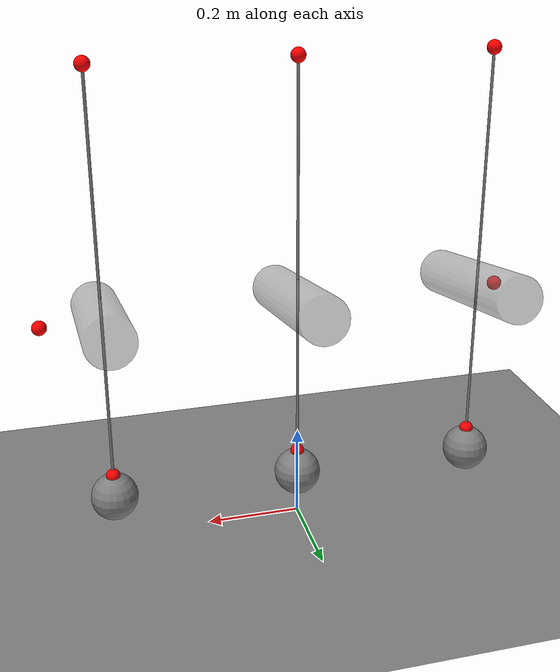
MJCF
<mujoco>
  <default>
    <site size=".015" rgba="1 0 0 1"/>
  </default>

  <worldbody>
    <light pos="0 0 3"/>
    <geom type="plane" size="2 2 .1"/>

    <site name="0a" pos="0 0 1"/>
    <geom name="0g" type="cylinder" size=".05 .2" zaxis="0 1 .2" pos="0 0 0.5" rgba=".5 .5 .5 .5"/>
    <body pos="0 0 .1">
      <freejoint/>
      <geom size=".05"/>
      <site name="0b" pos="0 0 .05"/>
    </body>

    <site name="1a" pos=".4 0 1"/>
    <geom name="1g" type="cylinder" size=".05 .2" zaxis="0 1 .2" pos=".4 0 0.5" rgba=".5 .5 .5 .5"/>
    <site name="1s" pos=".52 0 .5"/>
    <body pos=".4 0 .1">
      <freejoint/>
      <geom size=".05"/>
      <site name="1b" pos="0 0 .05"/>
    </body>

    <site name="2a" pos="-.4 0 1"/>
    <geom name="2g" type="cylinder" size=".05 .2" zaxis="0 1 .2" pos="-.4 0 0.5" rgba=".5 .5 .5 .5"/>
    <site name="2s" pos="-.44 0 .5"/>
    <body pos="-.4 0 .1">
      <freejoint/>
      <geom size=".05"/>
      <site name="2b" pos="0 0 .05"/>
    </body>
  </worldbody>

  <tendon>
    <spatial range="0 0.8">
      <site site="0a"/>
      <geom geom="0g"/>
      <site site="0b"/>
    </spatial>

    <spatial range="0 0.8">
      <site site="1a"/>
      <geom geom="1g" sidesite="1s"/>
      <site site="1b"/>
    </spatial>

    <spatial range="0 0.8">
      <site site="2a"/>
      <geom geom="2g" sidesite="2s"/>
      <site site="2b"/>
    </spatial>
  </tendon>
</mujoco>
